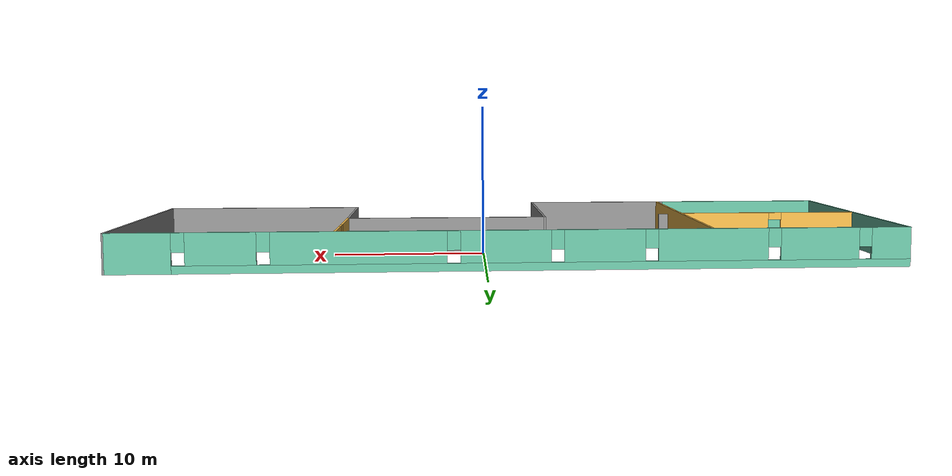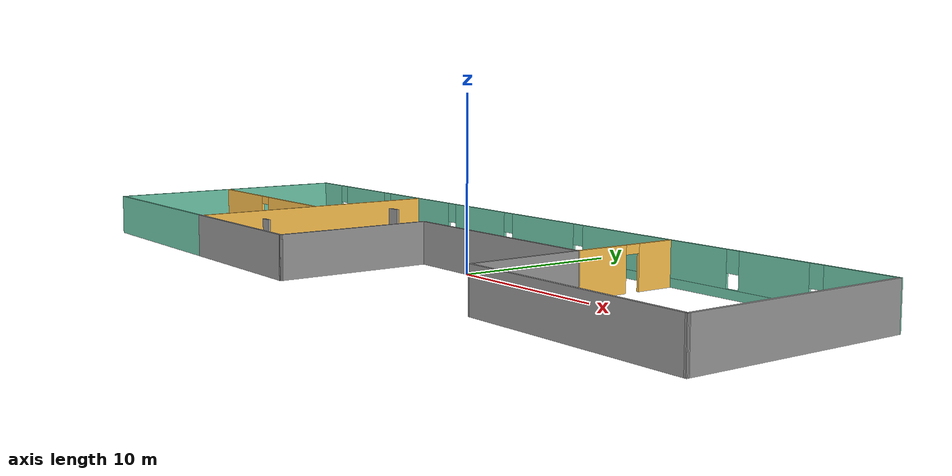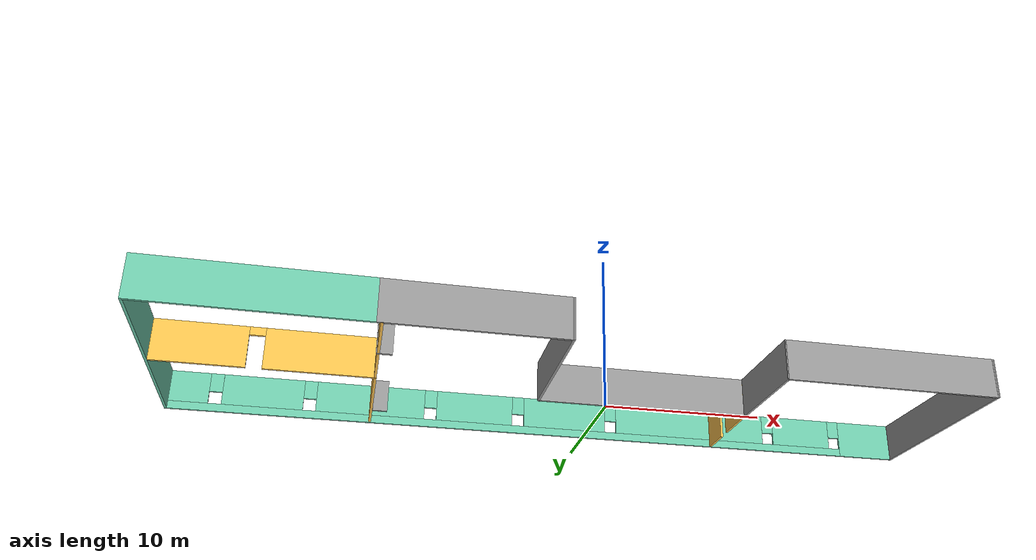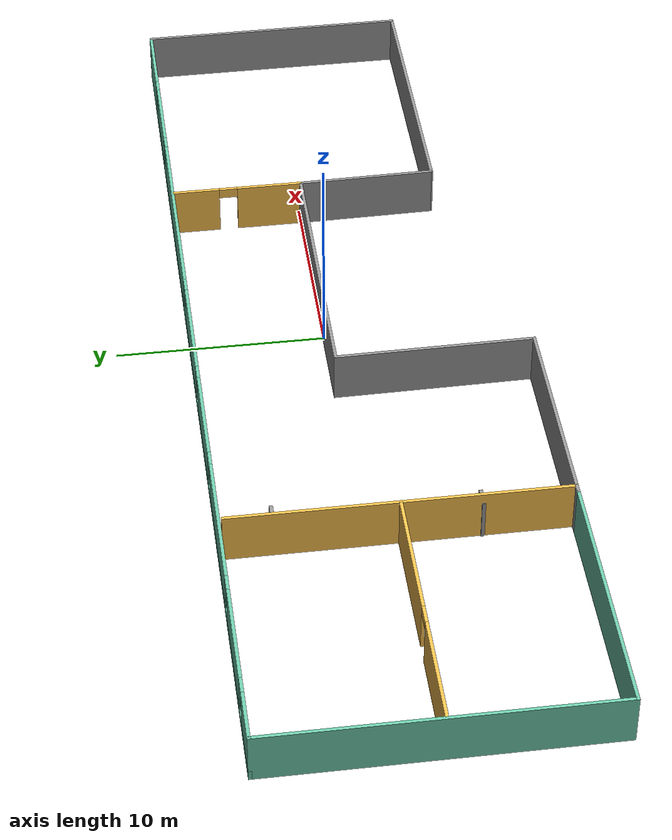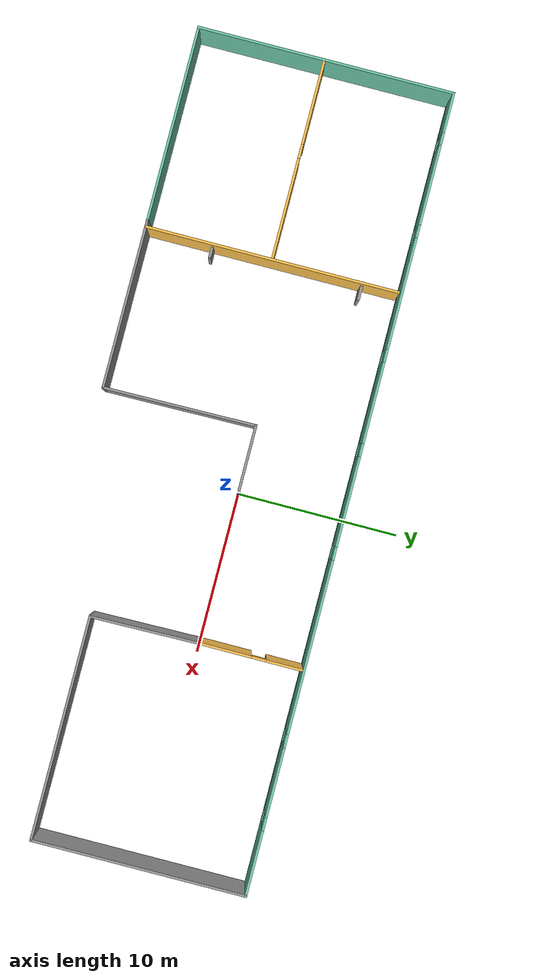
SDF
<?xml version='1.0'?>
<sdf version='1.6'>
  <model name='MyBuilding'>
    <pose frame=''>-1.85481 -1.4802 0 0 -0 0</pose>
    <link name='Door_4'>
      <collision name='Door_4_Collision'>
        <geometry>
          <box>
            <size>0.9 0.17 2</size>
          </box>
        </geometry>
        <pose frame=''>0 0 1 0 -0 0</pose>
      </collision>
      <visual name='Door_4_Visual'>
        <pose frame=''>0 0 1 0 -0 0</pose>
        <geometry>
          <box>
            <size>0.9 0.17 2</size>
          </box>
        </geometry>
        <material>
          <script>
            <uri>file://media/materials/scripts/gazebo.material</uri>
            <name>Gazebo/Grey</name>
          </script>
        </material>
      </visual>
      <pose frame=''>-11.699 5.51769 0 0 -0 0</pose>
    </link>
    <link name='Door_5'>
      <collision name='Door_5_Collision'>
        <geometry>
          <box>
            <size>0.9 0.17 2</size>
          </box>
        </geometry>
        <pose frame=''>0 0 1 0 -0 0</pose>
      </collision>
      <visual name='Door_5_Visual'>
        <pose frame=''>0 0 1 0 -0 0</pose>
        <geometry>
          <box>
            <size>0.9 0.17 2</size>
          </box>
        </geometry>
        <material>
          <script>
            <uri>file://media/materials/scripts/gazebo.material</uri>
            <name>Gazebo/Grey</name>
          </script>
        </material>
      </visual>
      <pose frame=''>-11.913 -3.79174 0 0 -0 0</pose>
    </link>
    <link name='Wall_22'>
      <collision name='Wall_22_Collision'>
        <geometry>
          <box>
            <size>16 0.15 2.5</size>
          </box>
        </geometry>
        <pose frame=''>0 0 1.25 0 -0 0</pose>
      </collision>
      <visual name='Wall_22_Visual'>
        <pose frame=''>0 0 1.25 0 -0 0</pose>
        <geometry>
          <box>
            <size>16 0.15 2.5</size>
          </box>
        </geometry>
        <material>
          <script>
            <uri>file://media/materials/scripts/gazebo.material</uri>
            <name>Gazebo/Grey</name>
          </script>
          <ambient>0.435294 0.796078 0.67451 1</ambient>
        </material>
        <meta>
          <layer>0</layer>
        </meta>
      </visual>
      <pose frame=''>-24.7002 0.000204 0 0 0 -1.5708</pose>
    </link>
    <link name='Wall_23'>
      <collision name='Wall_23_Collision'>
        <geometry>
          <box>
            <size>12.25 0.15 2.5</size>
          </box>
        </geometry>
        <pose frame=''>0 0 1.25 0 -0 0</pose>
      </collision>
      <visual name='Wall_23_Visual'>
        <pose frame=''>0 0 1.25 0 -0 0</pose>
        <geometry>
          <box>
            <size>12.25 0.15 2.5</size>
          </box>
        </geometry>
        <material>
          <script>
            <uri>file://media/materials/scripts/gazebo.material</uri>
            <name>Gazebo/Grey</name>
          </script>
          <ambient>0.435294 0.796078 0.67451 1</ambient>
        </material>
        <meta>
          <layer>0</layer>
        </meta>
      </visual>
      <pose frame=''>-18.6502 -7.9248 0 0 -0 0</pose>
    </link>
    <link name='Wall_24'>
      <collision name='Wall_24_Collision'>
        <geometry>
          <box>
            <size>10.5 0.15 2.5</size>
          </box>
        </geometry>
        <pose frame=''>0 0 1.25 0 -0 0</pose>
      </collision>
      <visual name='Wall_24_Visual'>
        <pose frame=''>0 0 1.25 0 -0 0</pose>
        <geometry>
          <box>
            <size>10.5 0.15 2.5</size>
          </box>
        </geometry>
        <material>
          <script>
            <uri>file://media/materials/scripts/gazebo.material</uri>
            <name>Gazebo/Grey</name>
          </script>
          <ambient>1 1 1 1</ambient>
        </material>
        <meta>
          <layer>0</layer>
        </meta>
      </visual>
      <pose frame=''>-7.42514 -7.92474 0 0 -0 1e-05</pose>
    </link>
    <link name='Wall_25'>
      <collision name='Wall_25_Collision'>
        <geometry>
          <box>
            <size>9.55411 0.15 2.5</size>
          </box>
        </geometry>
        <pose frame=''>0 0 1.25 0 -0 0</pose>
      </collision>
      <visual name='Wall_25_Visual'>
        <pose frame=''>0 0 1.25 0 -0 0</pose>
        <geometry>
          <box>
            <size>9.55411 0.15 2.5</size>
          </box>
        </geometry>
        <material>
          <script>
            <uri>file://media/materials/scripts/gazebo.material</uri>
            <name>Gazebo/Grey</name>
          </script>
          <ambient>1 1 1 1</ambient>
        </material>
        <meta>
          <layer>0</layer>
        </meta>
      </visual>
      <pose frame=''>-2.30359 -3.22294 0 0 -0 1.58218</pose>
    </link>
    <link name='Wall_26'>
      <collision name='Wall_26_Collision'>
        <geometry>
          <box>
            <size>13.4464 0.15 2.5</size>
          </box>
        </geometry>
        <pose frame=''>0 0 1.25 0 -0 0</pose>
      </collision>
      <visual name='Wall_26_Visual'>
        <pose frame=''>0 0 1.25 0 -0 0</pose>
        <geometry>
          <box>
            <size>13.4464 0.15 2.5</size>
          </box>
        </geometry>
        <material>
          <script>
            <uri>file://media/materials/scripts/gazebo.material</uri>
            <name>Gazebo/Grey</name>
          </script>
          <ambient>1 1 1 1</ambient>
        </material>
        <meta>
          <layer>0</layer>
        </meta>
      </visual>
      <pose frame=''>4.34461 1.47901 0 0 -0 3e-05</pose>
    </link>
    <link name='Wall_27'>
      <collision name='Wall_27_Collision'>
        <geometry>
          <box>
            <size>6.80436 0.15 2.5</size>
          </box>
        </geometry>
        <pose frame=''>0 0 1.25 0 -0 0</pose>
      </collision>
      <visual name='Wall_27_Visual'>
        <pose frame=''>0 0 1.25 0 -0 0</pose>
        <geometry>
          <box>
            <size>6.80436 0.15 2.5</size>
          </box>
        </geometry>
        <material>
          <script>
            <uri>file://media/materials/scripts/gazebo.material</uri>
            <name>Gazebo/Grey</name>
          </script>
          <ambient>1 1 1 1</ambient>
        </material>
        <meta>
          <layer>0</layer>
        </meta>
      </visual>
      <pose frame=''>11.0464 -1.84774 0 0 0 -1.5547</pose>
    </link>
    <link name='Wall_28'>
      <collision name='Wall_28_Collision'>
        <geometry>
          <box>
            <size>13.75 0.15 2.5</size>
          </box>
        </geometry>
        <pose frame=''>0 0 1.25 0 -0 0</pose>
      </collision>
      <visual name='Wall_28_Visual'>
        <pose frame=''>0 0 1.25 0 -0 0</pose>
        <geometry>
          <box>
            <size>13.75 0.15 2.5</size>
          </box>
        </geometry>
        <material>
          <script>
            <uri>file://media/materials/scripts/gazebo.material</uri>
            <name>Gazebo/Grey</name>
          </script>
          <ambient>1 1 1 1</ambient>
        </material>
        <meta>
          <layer>0</layer>
        </meta>
      </visual>
      <pose frame=''>17.8999 -5.17469 0 0 -0 0</pose>
    </link>
    <link name='Wall_29'>
      <collision name='Wall_29_Collision'>
        <geometry>
          <box>
            <size>13.2501 0.15 2.5</size>
          </box>
        </geometry>
        <pose frame=''>0 0 1.25 0 -0 0</pose>
      </collision>
      <visual name='Wall_29_Visual'>
        <pose frame=''>0 0 1.25 0 -0 0</pose>
        <geometry>
          <box>
            <size>13.2501 0.15 2.5</size>
          </box>
        </geometry>
        <material>
          <script>
            <uri>file://media/materials/scripts/gazebo.material</uri>
            <name>Gazebo/Grey</name>
          </script>
          <ambient>1 1 1 1</ambient>
        </material>
        <meta>
          <layer>0</layer>
        </meta>
      </visual>
      <pose frame=''>24.6749 1.37526 0 0 -0 1.57462</pose>
    </link>
    <link name='Wall_30'>
      <pose frame=''>-0.025193 7.9252 0 0 -0 3.14159</pose>
      <visual name='Wall_30_Visual_0'>
        <pose frame=''>-22.7354 0 1.25 0 -0 0</pose>
        <geometry>
          <box>
            <size>4.0293 0.15 2.5</size>
          </box>
        </geometry>
        <material>
          <script>
            <uri>file://media/materials/scripts/gazebo.material</uri>
            <name>Gazebo/Grey</name>
          </script>
          <ambient>0.435294 0.796078 0.67451 1</ambient>
        </material>
        <meta>
          <layer>0</layer>
        </meta>
      </visual>
      <collision name='Wall_30_Collision_0'>
        <geometry>
          <box>
            <size>4.0293 0.15 2.5</size>
          </box>
        </geometry>
        <pose frame=''>-22.7354 0 1.25 0 -0 0</pose>
      </collision>
      <visual name='Wall_30_Visual_1'>
        <pose frame=''>2.01465 0 0.25 0 -0 0</pose>
        <geometry>
          <box>
            <size>45.4707 0.15 0.5</size>
          </box>
        </geometry>
        <material>
          <script>
            <uri>file://media/materials/scripts/gazebo.material</uri>
            <name>Gazebo/Grey</name>
          </script>
          <ambient>0.435294 0.796078 0.67451 1</ambient>
        </material>
        <meta>
          <layer>0</layer>
        </meta>
      </visual>
      <collision name='Wall_30_Collision_1'>
        <geometry>
          <box>
            <size>45.4707 0.15 0.5</size>
          </box>
        </geometry>
        <pose frame=''>2.01465 0 0.25 0 -0 0</pose>
      </collision>
      <visual name='Wall_30_Visual_2'>
        <pose frame=''>-17.8061 0 1.5 0 -0 0</pose>
        <geometry>
          <box>
            <size>4.22924 0.15 2</size>
          </box>
        </geometry>
        <material>
          <script>
            <uri>file://media/materials/scripts/gazebo.material</uri>
            <name>Gazebo/Grey</name>
          </script>
          <ambient>0.435294 0.796078 0.67451 1</ambient>
        </material>
        <meta>
          <layer>0</layer>
        </meta>
      </visual>
      <collision name='Wall_30_Collision_2'>
        <geometry>
          <box>
            <size>4.22924 0.15 2</size>
          </box>
        </geometry>
        <pose frame=''>-17.8061 0 1.5 0 -0 0</pose>
      </collision>
      <visual name='Wall_30_Visual_3'>
        <pose frame=''>-9.5667 0 1.5 0 -0 0</pose>
        <geometry>
          <box>
            <size>10.6495 0.15 2</size>
          </box>
        </geometry>
        <material>
          <script>
            <uri>file://media/materials/scripts/gazebo.material</uri>
            <name>Gazebo/Grey</name>
          </script>
          <ambient>0.435294 0.796078 0.67451 1</ambient>
        </material>
        <meta>
          <layer>0</layer>
        </meta>
      </visual>
      <collision name='Wall_30_Collision_3'>
        <geometry>
          <box>
            <size>10.6495 0.15 2</size>
          </box>
        </geometry>
        <pose frame=''>-9.5667 0 1.5 0 -0 0</pose>
      </collision>
      <visual name='Wall_30_Visual_4'>
        <pose frame=''>-0.658536 0 1.5 0 -0 0</pose>
        <geometry>
          <box>
            <size>5.5668 0.15 2</size>
          </box>
        </geometry>
        <material>
          <script>
            <uri>file://media/materials/scripts/gazebo.material</uri>
            <name>Gazebo/Grey</name>
          </script>
          <ambient>0.435294 0.796078 0.67451 1</ambient>
        </material>
        <meta>
          <layer>0</layer>
        </meta>
      </visual>
      <collision name='Wall_30_Collision_4'>
        <geometry>
          <box>
            <size>5.5668 0.15 2</size>
          </box>
        </geometry>
        <pose frame=''>-0.658536 0 1.5 0 -0 0</pose>
      </collision>
      <visual name='Wall_30_Visual_5'>
        <pose frame=''>5.44075 0 1.5 0 -0 0</pose>
        <geometry>
          <box>
            <size>5.03177 0.15 2</size>
          </box>
        </geometry>
        <material>
          <script>
            <uri>file://media/materials/scripts/gazebo.material</uri>
            <name>Gazebo/Grey</name>
          </script>
          <ambient>0.435294 0.796078 0.67451 1</ambient>
        </material>
        <meta>
          <layer>0</layer>
        </meta>
      </visual>
      <collision name='Wall_30_Collision_5'>
        <geometry>
          <box>
            <size>5.03177 0.15 2</size>
          </box>
        </geometry>
        <pose frame=''>5.44075 0 1.5 0 -0 0</pose>
      </collision>
      <visual name='Wall_30_Visual_6'>
        <pose frame=''>12.2088 0 1.5 0 -0 0</pose>
        <geometry>
          <box>
            <size>6.90436 0.15 2</size>
          </box>
        </geometry>
        <material>
          <script>
            <uri>file://media/materials/scripts/gazebo.material</uri>
            <name>Gazebo/Grey</name>
          </script>
          <ambient>0.435294 0.796078 0.67451 1</ambient>
        </material>
        <meta>
          <layer>0</layer>
        </meta>
      </visual>
      <collision name='Wall_30_Collision_6'>
        <geometry>
          <box>
            <size>6.90436 0.15 2</size>
          </box>
        </geometry>
        <pose frame=''>12.2088 0 1.5 0 -0 0</pose>
      </collision>
      <visual name='Wall_30_Visual_7'>
        <pose frame=''>18.9501 0 1.5 0 -0 0</pose>
        <geometry>
          <box>
            <size>4.97827 0.15 2</size>
          </box>
        </geometry>
        <material>
          <script>
            <uri>file://media/materials/scripts/gazebo.material</uri>
            <name>Gazebo/Grey</name>
          </script>
          <ambient>0.435294 0.796078 0.67451 1</ambient>
        </material>
        <meta>
          <layer>0</layer>
        </meta>
      </visual>
      <collision name='Wall_30_Collision_7'>
        <geometry>
          <box>
            <size>4.97827 0.15 2</size>
          </box>
        </geometry>
        <pose frame=''>18.9501 0 1.5 0 -0 0</pose>
      </collision>
      <visual name='Wall_30_Visual_8'>
        <pose frame=''>23.4946 0 1.5 0 -0 0</pose>
        <geometry>
          <box>
            <size>2.51073 0.15 2</size>
          </box>
        </geometry>
        <material>
          <script>
            <uri>file://media/materials/scripts/gazebo.material</uri>
            <name>Gazebo/Grey</name>
          </script>
          <ambient>0.435294 0.796078 0.67451 1</ambient>
        </material>
        <meta>
          <layer>0</layer>
        </meta>
      </visual>
      <collision name='Wall_30_Collision_8'>
        <geometry>
          <box>
            <size>2.51073 0.15 2</size>
          </box>
        </geometry>
        <pose frame=''>23.4946 0 1.5 0 -0 0</pose>
      </collision>
      <visual name='Wall_30_Visual_9'>
        <pose frame=''>-20.3207 0 1.9 0 -0 0</pose>
        <geometry>
          <box>
            <size>0.8 0.15 1.2</size>
          </box>
        </geometry>
        <material>
          <script>
            <uri>file://media/materials/scripts/gazebo.material</uri>
            <name>Gazebo/Grey</name>
          </script>
          <ambient>0.435294 0.796078 0.67451 1</ambient>
        </material>
        <meta>
          <layer>0</layer>
        </meta>
      </visual>
      <collision name='Wall_30_Collision_9'>
        <geometry>
          <box>
            <size>0.8 0.15 1.2</size>
          </box>
        </geometry>
        <pose frame=''>-20.3207 0 1.9 0 -0 0</pose>
      </collision>
      <visual name='Wall_30_Visual_10'>
        <pose frame=''>-15.2915 0 1.9 0 -0 0</pose>
        <geometry>
          <box>
            <size>0.8 0.15 1.2</size>
          </box>
        </geometry>
        <material>
          <script>
            <uri>file://media/materials/scripts/gazebo.material</uri>
            <name>Gazebo/Grey</name>
          </script>
          <ambient>0.435294 0.796078 0.67451 1</ambient>
        </material>
        <meta>
          <layer>0</layer>
        </meta>
      </visual>
      <collision name='Wall_30_Collision_10'>
        <geometry>
          <box>
            <size>0.8 0.15 1.2</size>
          </box>
        </geometry>
        <pose frame=''>-15.2915 0 1.9 0 -0 0</pose>
      </collision>
      <visual name='Wall_30_Visual_11'>
        <pose frame=''>-3.84193 0 1.9 0 -0 0</pose>
        <geometry>
          <box>
            <size>0.8 0.15 1.2</size>
          </box>
        </geometry>
        <material>
          <script>
            <uri>file://media/materials/scripts/gazebo.material</uri>
            <name>Gazebo/Grey</name>
          </script>
          <ambient>0.435294 0.796078 0.67451 1</ambient>
        </material>
        <meta>
          <layer>0</layer>
        </meta>
      </visual>
      <collision name='Wall_30_Collision_11'>
        <geometry>
          <box>
            <size>0.8 0.15 1.2</size>
          </box>
        </geometry>
        <pose frame=''>-3.84193 0 1.9 0 -0 0</pose>
      </collision>
      <visual name='Wall_30_Visual_12'>
        <pose frame=''>2.52486 0 1.9 0 -0 0</pose>
        <geometry>
          <box>
            <size>0.8 0.15 1.2</size>
          </box>
        </geometry>
        <material>
          <script>
            <uri>file://media/materials/scripts/gazebo.material</uri>
            <name>Gazebo/Grey</name>
          </script>
          <ambient>0.435294 0.796078 0.67451 1</ambient>
        </material>
        <meta>
          <layer>0</layer>
        </meta>
      </visual>
      <collision name='Wall_30_Collision_12'>
        <geometry>
          <box>
            <size>0.8 0.15 1.2</size>
          </box>
        </geometry>
        <pose frame=''>2.52486 0 1.9 0 -0 0</pose>
      </collision>
      <visual name='Wall_30_Visual_13'>
        <pose frame=''>8.35664 0 1.9 0 -0 0</pose>
        <geometry>
          <box>
            <size>0.8 0.15 1.2</size>
          </box>
        </geometry>
        <material>
          <script>
            <uri>file://media/materials/scripts/gazebo.material</uri>
            <name>Gazebo/Grey</name>
          </script>
          <ambient>0.435294 0.796078 0.67451 1</ambient>
        </material>
        <meta>
          <layer>0</layer>
        </meta>
      </visual>
      <collision name='Wall_30_Collision_13'>
        <geometry>
          <box>
            <size>0.8 0.15 1.2</size>
          </box>
        </geometry>
        <pose frame=''>8.35664 0 1.9 0 -0 0</pose>
      </collision>
      <visual name='Wall_30_Visual_14'>
        <pose frame=''>16.061 0 1.9 0 -0 0</pose>
        <geometry>
          <box>
            <size>0.8 0.15 1.2</size>
          </box>
        </geometry>
        <material>
          <script>
            <uri>file://media/materials/scripts/gazebo.material</uri>
            <name>Gazebo/Grey</name>
          </script>
          <ambient>0.435294 0.796078 0.67451 1</ambient>
        </material>
        <meta>
          <layer>0</layer>
        </meta>
      </visual>
      <collision name='Wall_30_Collision_14'>
        <geometry>
          <box>
            <size>0.8 0.15 1.2</size>
          </box>
        </geometry>
        <pose frame=''>16.061 0 1.9 0 -0 0</pose>
      </collision>
      <visual name='Wall_30_Visual_15'>
        <pose frame=''>21.8393 0 1.9 0 -0 0</pose>
        <geometry>
          <box>
            <size>0.8 0.15 1.2</size>
          </box>
        </geometry>
        <material>
          <script>
            <uri>file://media/materials/scripts/gazebo.material</uri>
            <name>Gazebo/Grey</name>
          </script>
          <ambient>0.435294 0.796078 0.67451 1</ambient>
        </material>
        <meta>
          <layer>0</layer>
        </meta>
      </visual>
      <collision name='Wall_30_Collision_15'>
        <geometry>
          <box>
            <size>0.8 0.15 1.2</size>
          </box>
        </geometry>
        <pose frame=''>21.8393 0 1.9 0 -0 0</pose>
      </collision>
    </link>
    <link name='Wall_32'>
      <collision name='Wall_32_Collision'>
        <geometry>
          <box>
            <size>15.75 0.15 2.5</size>
          </box>
        </geometry>
        <pose frame=''>0 0 1.25 0 -0 0</pose>
      </collision>
      <visual name='Wall_32_Visual'>
        <pose frame=''>0 0 1.25 0 -0 0</pose>
        <geometry>
          <box>
            <size>15.75 0.15 2.5</size>
          </box>
        </geometry>
        <material>
          <script>
            <uri>file://media/materials/scripts/gazebo.material</uri>
            <name>Gazebo/Grey</name>
          </script>
          <ambient>1 0.764706 0.305882 1</ambient>
        </material>
        <meta>
          <layer>0</layer>
        </meta>
      </visual>
      <pose frame=''>-12.2342 -0.088796 0 0 0 -1.5708</pose>
    </link>
    <link name='Wall_34'>
      <pose frame=''>-18.4182 -0.099796 0 0 -0 0</pose>
      <visual name='Wall_34_Visual_0'>
        <pose frame=''>-3.62857 0 1.25 0 -0 0</pose>
        <geometry>
          <box>
            <size>5.24287 0.15 2.5</size>
          </box>
        </geometry>
        <material>
          <script>
            <uri>file://media/materials/scripts/gazebo.material</uri>
            <name>Gazebo/Grey</name>
          </script>
          <ambient>1 0.764706 0.305882 1</ambient>
        </material>
        <meta>
          <layer>0</layer>
        </meta>
      </visual>
      <collision name='Wall_34_Collision_0'>
        <geometry>
          <box>
            <size>5.24287 0.15 2.5</size>
          </box>
        </geometry>
        <pose frame=''>-3.62857 0 1.25 0 -0 0</pose>
      </collision>
      <visual name='Wall_34_Visual_1'>
        <pose frame=''>3.07144 0 1.25 0 -0 0</pose>
        <geometry>
          <box>
            <size>6.35713 0.15 2.5</size>
          </box>
        </geometry>
        <material>
          <script>
            <uri>file://media/materials/scripts/gazebo.material</uri>
            <name>Gazebo/Grey</name>
          </script>
          <ambient>1 0.764706 0.305882 1</ambient>
        </material>
        <meta>
          <layer>0</layer>
        </meta>
      </visual>
      <collision name='Wall_34_Collision_1'>
        <geometry>
          <box>
            <size>6.35713 0.15 2.5</size>
          </box>
        </geometry>
        <pose frame=''>3.07144 0 1.25 0 -0 0</pose>
      </collision>
      <visual name='Wall_34_Visual_2'>
        <pose frame=''>-0.557131 0 2.25 0 -0 0</pose>
        <geometry>
          <box>
            <size>0.9 0.15 0.5</size>
          </box>
        </geometry>
        <material>
          <script>
            <uri>file://media/materials/scripts/gazebo.material</uri>
            <name>Gazebo/Grey</name>
          </script>
          <ambient>1 0.764706 0.305882 1</ambient>
        </material>
        <meta>
          <layer>0</layer>
        </meta>
      </visual>
      <collision name='Wall_34_Collision_2'>
        <geometry>
          <box>
            <size>0.9 0.15 0.5</size>
          </box>
        </geometry>
        <pose frame=''>-0.557131 0 2.25 0 -0 0</pose>
      </collision>
    </link>
    <link name='Wall_36'>
      <pose frame=''>10.9928 4.6542 0 0 0 -1.5708</pose>
      <visual name='Wall_36_Visual_0'>
        <pose frame=''>-2.09449 0 1.25 0 -0 0</pose>
        <geometry>
          <box>
            <size>2.31103 0.15 2.5</size>
          </box>
        </geometry>
        <material>
          <script>
            <uri>file://media/materials/scripts/gazebo.material</uri>
            <name>Gazebo/Grey</name>
          </script>
          <ambient>1 0.764706 0.305882 1</ambient>
        </material>
        <meta>
          <layer>0</layer>
        </meta>
      </visual>
      <collision name='Wall_36_Collision_0'>
        <geometry>
          <box>
            <size>2.31103 0.15 2.5</size>
          </box>
        </geometry>
        <pose frame=''>-2.09449 0 1.25 0 -0 0</pose>
      </collision>
      <visual name='Wall_36_Visual_1'>
        <pose frame=''>1.60551 0 1.25 0 -0 0</pose>
        <geometry>
          <box>
            <size>3.28897 0.15 2.5</size>
          </box>
        </geometry>
        <material>
          <script>
            <uri>file://media/materials/scripts/gazebo.material</uri>
            <name>Gazebo/Grey</name>
          </script>
          <ambient>1 0.764706 0.305882 1</ambient>
        </material>
        <meta>
          <layer>0</layer>
        </meta>
      </visual>
      <collision name='Wall_36_Collision_1'>
        <geometry>
          <box>
            <size>3.28897 0.15 2.5</size>
          </box>
        </geometry>
        <pose frame=''>1.60551 0 1.25 0 -0 0</pose>
      </collision>
      <visual name='Wall_36_Visual_2'>
        <pose frame=''>-0.488973 0 2.25 0 -0 0</pose>
        <geometry>
          <box>
            <size>0.9 0.15 0.5</size>
          </box>
        </geometry>
        <material>
          <script>
            <uri>file://media/materials/scripts/gazebo.material</uri>
            <name>Gazebo/Grey</name>
          </script>
          <ambient>1 0.764706 0.305882 1</ambient>
        </material>
        <meta>
          <layer>0</layer>
        </meta>
      </visual>
      <collision name='Wall_36_Collision_2'>
        <geometry>
          <box>
            <size>0.9 0.15 0.5</size>
          </box>
        </geometry>
        <pose frame=''>-0.488973 0 2.25 0 -0 0</pose>
      </collision>
    </link>
    <static>1</static>
  </model>
</sdf>
